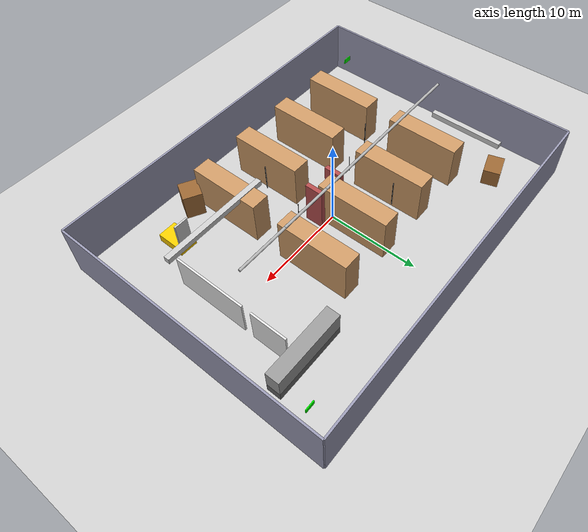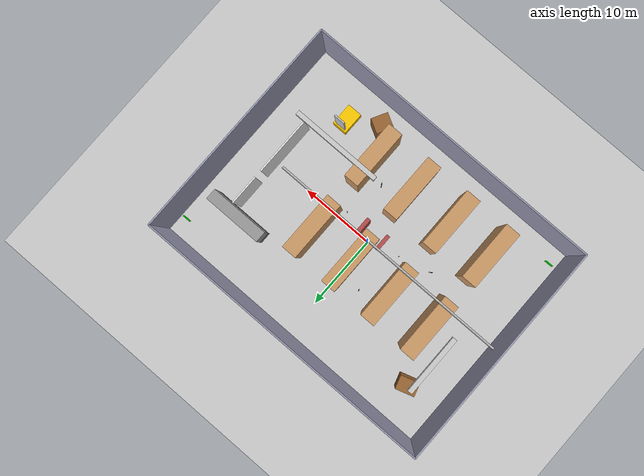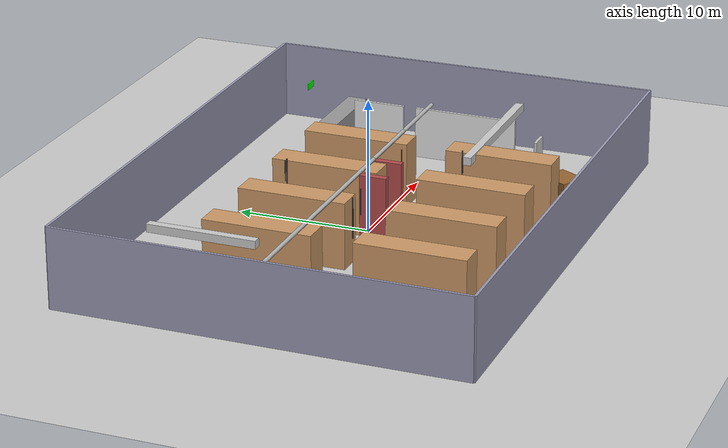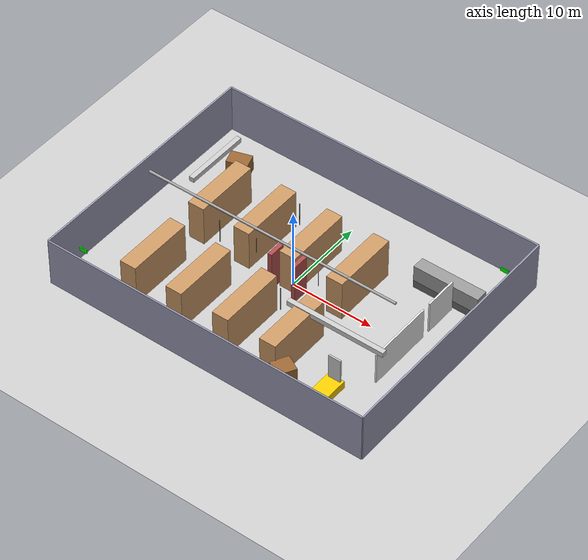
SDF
<?xml version="1.0" ?>
<sdf version="1.8">
  <world name="default">
    <!-- simple directional light (avoids needing model://sun) -->
    <light name="sun" type="directional">
      <cast_shadows>true</cast_shadows>
      <direction>-0.5 0.5 -1</direction>
      <diffuse>1 1 1 1</diffuse>
      <specular>0.1 0.1 0.1 1</specular>
    </light>

    <!-- Additional warehouse lighting -->
    <light name="warehouse_light_1" type="point">
      <pose>-10 -5 5.5 0 0 0</pose>
      <diffuse>0.8 0.8 0.8 1</diffuse>
      <specular>0.2 0.2 0.2 1</specular>
      <attenuation>
        <range>15</range>
        <constant>0.1</constant>
        <linear>0.01</linear>
        <quadratic>0.001</quadratic>
      </attenuation>
      <cast_shadows>true</cast_shadows>
    </light>

    <light name="warehouse_light_2" type="point">
      <pose>0 0 5.5 0 0 0</pose>
      <diffuse>0.8 0.8 0.8 1</diffuse>
      <specular>0.2 0.2 0.2 1</specular>
      <attenuation>
        <range>15</range>
        <constant>0.1</constant>
        <linear>0.01</linear>
        <quadratic>0.001</quadratic>
      </attenuation>
      <cast_shadows>true</cast_shadows>
    </light>

    <light name="warehouse_light_3" type="point">
      <pose>10 5 5.5 0 0 0</pose>
      <diffuse>0.8 0.8 0.8 1</diffuse>
      <specular>0.2 0.2 0.2 1</specular>
      <attenuation>
        <range>15</range>
        <constant>0.1</constant>
        <linear>0.01</linear>
        <quadratic>0.001</quadratic>
      </attenuation>
      <cast_shadows>true</cast_shadows>
    </light>

    <light name="entrance_light" type="spot">
      <pose>-18 0 4 0 0.5 1.57</pose>
      <diffuse>1 1 0.8 1</diffuse>
      <specular>0.3 0.3 0.2 1</specular>
      <direction>1 0 -0.5</direction>
      <attenuation>
        <range>20</range>
        <constant>0.1</constant>
        <linear>0.01</linear>
        <quadratic>0.001</quadratic>
      </attenuation>
      <spot>
        <inner_angle>0.6</inner_angle>
        <outer_angle>1.0</outer_angle>
        <falloff>1</falloff>
      </spot>
      <cast_shadows>true</cast_shadows>
    </light>

    <!-- Complex Warehouse Structure -->
    <!-- Main Warehouse Building -->
    <model name="warehouse_building">
      <!-- Floor -->
      <static>true</static>
      <link name="floor">
        <pose>0 0 0 0 0 0</pose>
        <collision name="floor_collision">
          <geometry>
            <box>
              <size>40 30 0.1</size>
            </box>
          </geometry>
        </collision>
        <visual name="floor_visual">
          <geometry>
            <box>
              <size>40 30 0.1</size>
            </box>
          </geometry>
          <material>
            <ambient>0.8 0.8 0.8 1</ambient>
            <diffuse>0.8 0.8 0.8 1</diffuse>
          </material>
        </visual>
      </link>

      <!-- Walls -->
      <!-- North Wall -->
      <link name="north_wall">
        <pose>0 15 3 0 0 0</pose>
        <collision name="north_wall_collision">
          <geometry>
            <box>
              <size>40 0.2 6</size>
            </box>
          </geometry>
        </collision>
        <visual name="north_wall_visual">
          <geometry>
            <box>
              <size>40 0.2 6</size>
            </box>
          </geometry>
          <material>
            <ambient>0.6 0.6 0.7 1</ambient>
            <diffuse>0.6 0.6 0.7 1</diffuse>
          </material>
        </visual>
      </link>

      <!-- South Wall -->
      <link name="south_wall">
        <pose>0 -15 3 0 0 0</pose>
        <collision name="south_wall_collision">
          <geometry>
            <box>
              <size>40 0.2 6</size>
            </box>
          </geometry>
        </collision>
        <visual name="south_wall_visual">
          <geometry>
            <box>
              <size>40 0.2 6</size>
            </box>
          </geometry>
          <material>
            <ambient>0.6 0.6 0.7 1</ambient>
            <diffuse>0.6 0.6 0.7 1</diffuse>
          </material>
        </visual>
      </link>

      <!-- East Wall -->
      <link name="east_wall">
        <pose>20 0 3 0 0 0</pose>
        <collision name="east_wall_collision">
          <geometry>
            <box>
              <size>0.2 30 6</size>
            </box>
          </geometry>
        </collision>
        <visual name="east_wall_visual">
          <geometry>
            <box>
              <size>0.2 30 6</size>
            </box>
          </geometry>
          <material>
            <ambient>0.6 0.6 0.7 1</ambient>
            <diffuse>0.6 0.6 0.7 1</diffuse>
          </material>
        </visual>
      </link>

      <!-- West Wall -->
      <link name="west_wall">
        <pose>-20 0 3 0 0 0</pose>
        <collision name="west_wall_collision">
          <geometry>
            <box>
              <size>0.2 30 6</size>
            </box>
          </geometry>
        </collision>
        <visual name="west_wall_visual">
          <geometry>
            <box>
              <size>0.2 30 6</size>
            </box>
          </geometry>
          <material>
            <ambient>0.6 0.6 0.7 1</ambient>
            <diffuse>0.6 0.6 0.7 1</diffuse>
          </material>
        </visual>
      </link>

      <!-- Ceiling -->
    </model>

    <!-- Shelving Units - Creating Narrow Corridors -->
    <!-- Row 1 of Shelves -->
    <model name="shelf_row_1">
      <static>true</static>
      <link name="shelf_1a">
        <pose>-12 -8 2.5 0 0 0</pose>
        <collision name="shelf_1a_collision">
          <geometry>
            <box>
              <size>2 8 5</size>
            </box>
          </geometry>
        </collision>
        <visual name="shelf_1a_visual">
          <geometry>
            <box>
              <size>2 8 5</size>
            </box>
          </geometry>
          <material>
            <ambient>0.8 0.6 0.4 1</ambient>
            <diffuse>0.8 0.6 0.4 1</diffuse>
          </material>
        </visual>
      </link>

      <link name="shelf_1b">
        <pose>-12 3 2.5 0 0 0</pose>
        <collision name="shelf_1b_collision">
          <geometry>
            <box>
              <size>2 8 5</size>
            </box>
          </geometry>
        </collision>
        <visual name="shelf_1b_visual">
          <geometry>
            <box>
              <size>2 8 5</size>
            </box>
          </geometry>
          <material>
            <ambient>0.8 0.6 0.4 1</ambient>
            <diffuse>0.8 0.6 0.4 1</diffuse>
          </material>
        </visual>
      </link>
    </model>

    <!-- Row 2 of Shelves -->
    <model name="shelf_row_2">
      <static>true</static>
      <link name="shelf_2a">
        <pose>-6 -8 2.5 0 0 0</pose>
        <collision name="shelf_2a_collision">
          <geometry>
            <box>
              <size>2 8 5</size>
            </box>
          </geometry>
        </collision>
        <visual name="shelf_2a_visual">
          <geometry>
            <box>
              <size>2 8 5</size>
            </box>
          </geometry>
          <material>
            <ambient>0.8 0.6 0.4 1</ambient>
            <diffuse>0.8 0.6 0.4 1</diffuse>
          </material>
        </visual>
      </link>

      <link name="shelf_2b">
        <pose>-6 3 2.5 0 0 0</pose>
        <collision name="shelf_2b_collision">
          <geometry>
            <box>
              <size>2 8 5</size>
            </box>
          </geometry>
        </collision>
        <visual name="shelf_2b_visual">
          <geometry>
            <box>
              <size>2 8 5</size>
            </box>
          </geometry>
          <material>
            <ambient>0.8 0.6 0.4 1</ambient>
            <diffuse>0.8 0.6 0.4 1</diffuse>
          </material>
        </visual>
      </link>
    </model>

    <!-- Row 3 of Shelves -->
    <model name="shelf_row_3">
      <static>true</static>
      <link name="shelf_3a">
        <pose>0 -8 2.5 0 0 0</pose>
        <collision name="shelf_3a_collision">
          <geometry>
            <box>
              <size>2 8 5</size>
            </box>
          </geometry>
        </collision>
        <visual name="shelf_3a_visual">
          <geometry>
            <box>
              <size>2 8 5</size>
            </box>
          </geometry>
          <material>
            <ambient>0.8 0.6 0.4 1</ambient>
            <diffuse>0.8 0.6 0.4 1</diffuse>
          </material>
        </visual>
      </link>

      <link name="shelf_3b">
        <pose>0 3 2.5 0 0 0</pose>
        <collision name="shelf_3b_collision">
          <geometry>
            <box>
              <size>2 8 5</size>
            </box>
          </geometry>
        </collision>
        <visual name="shelf_3b_visual">
          <geometry>
            <box>
              <size>2 8 5</size>
            </box>
          </geometry>
          <material>
            <ambient>0.8 0.6 0.4 1</ambient>
            <diffuse>0.8 0.6 0.4 1</diffuse>
          </material>
        </visual>
      </link>
    </model>

    <!-- Row 4 of Shelves -->
    <model name="shelf_row_4">
      <static>true</static>
      <link name="shelf_4a">
        <pose>6 -8 2.5 0 0 0</pose>
        <collision name="shelf_4a_collision">
          <geometry>
            <box>
              <size>2 8 5</size>
            </box>
          </geometry>
        </collision>
        <visual name="shelf_4a_visual">
          <geometry>
            <box>
              <size>2 8 5</size>
            </box>
          </geometry>
          <material>
            <ambient>0.8 0.6 0.4 1</ambient>
            <diffuse>0.8 0.6 0.4 1</diffuse>
          </material>
        </visual>
      </link>

      <link name="shelf_4b">
        <pose>6 3 2.5 0 0 0</pose>
        <collision name="shelf_4b_collision">
          <geometry>
            <box>
              <size>2 8 5</size>
            </box>
          </geometry>
        </collision>
        <visual name="shelf_4b_visual">
          <geometry>
            <box>
              <size>2 8 5</size>
            </box>
          </geometry>
          <material>
            <ambient>0.8 0.6 0.4 1</ambient>
            <diffuse>0.8 0.6 0.4 1</diffuse>
          </material>
        </visual>
      </link>
    </model>

    <!-- Hanging Obstacles and Pipes -->
    <!-- Hanging Cables -->
    <model name="hanging_cables">
      <static>true</static>
      <link name="cable_1">
        <pose>-8 -2 4.5 0 0 0</pose>
        <collision name="cable_1_collision">
          <geometry>
            <cylinder>
              <radius>0.05</radius>
              <length>3</length>
            </cylinder>
          </geometry>
        </collision>
        <visual name="cable_1_visual">
          <geometry>
            <cylinder>
              <radius>0.05</radius>
              <length>3</length>
            </cylinder>
          </geometry>
          <material>
            <ambient>0.2 0.2 0.2 1</ambient>
            <diffuse>0.2 0.2 0.2 1</diffuse>
          </material>
        </visual>
      </link>

      <link name="cable_2">
        <pose>-3 5 4.5 0 0 0</pose>
        <collision name="cable_2_collision">
          <geometry>
            <cylinder>
              <radius>0.05</radius>
              <length>3</length>
            </cylinder>
          </geometry>
        </collision>
        <visual name="cable_2_visual">
          <geometry>
            <cylinder>
              <radius>0.05</radius>
              <length>3</length>
            </cylinder>
          </geometry>
          <material>
            <ambient>0.2 0.2 0.2 1</ambient>
            <diffuse>0.2 0.2 0.2 1</diffuse>
          </material>
        </visual>
      </link>

      <link name="cable_3">
        <pose>3 -6 4.5 0 0 0</pose>
        <collision name="cable_3_collision">
          <geometry>
            <cylinder>
              <radius>0.05</radius>
              <length>3</length>
            </cylinder>
          </geometry>
        </collision>
        <visual name="cable_3_visual">
          <geometry>
            <cylinder>
              <radius>0.05</radius>
              <length>3</length>
            </cylinder>
          </geometry>
          <material>
            <ambient>0.2 0.2 0.2 1</ambient>
            <diffuse>0.2 0.2 0.2 1</diffuse>
          </material>
        </visual>
      </link>
    </model>

    <!-- Overhead Pipes -->
    <model name="overhead_pipes">
      <static>true</static>
      <link name="pipe_1">
        <pose>-9 0 5.2 0 1.57 0</pose>
        <collision name="pipe_1_collision">
          <geometry>
            <cylinder>
              <radius>0.15</radius>
              <length>20</length>
            </cylinder>
          </geometry>
        </collision>
        <visual name="pipe_1_visual">
          <geometry>
            <cylinder>
              <radius>0.15</radius>
              <length>20</length>
            </cylinder>
          </geometry>
          <material>
            <ambient>0.7 0.7 0.7 1</ambient>
            <diffuse>0.7 0.7 0.7 1</diffuse>
          </material>
        </visual>
      </link>

      <link name="pipe_2">
        <pose>-3 0 5.2 0 1.57 0</pose>
        <collision name="pipe_2_collision">
          <geometry>
            <cylinder>
              <radius>0.15</radius>
              <length>20</length>
            </cylinder>
          </geometry>
        </collision>
        <visual name="pipe_2_visual">
          <geometry>
            <cylinder>
              <radius>0.15</radius>
              <length>20</length>
            </cylinder>
          </geometry>
          <material>
            <ambient>0.7 0.7 0.7 1</ambient>
            <diffuse>0.7 0.7 0.7 1</diffuse>
          </material>
        </visual>
      </link>

      <link name="pipe_3">
        <pose>3 0 5.2 0 1.57 0</pose>
        <collision name="pipe_3_collision">
          <geometry>
            <cylinder>
              <radius>0.15</radius>
              <length>20</length>
            </cylinder>
          </geometry>
        </collision>
        <visual name="pipe_3_visual">
          <geometry>
            <cylinder>
              <radius>0.15</radius>
              <length>20</length>
            </cylinder>
          </geometry>
          <material>
            <ambient>0.7 0.7 0.7 1</ambient>
            <diffuse>0.7 0.7 0.7 1</diffuse>
          </material>
        </visual>
      </link>
    </model>

    <!-- Storage Equipment -->
    <!-- Forklift -->
    <model name="forklift">
      <static>true</static>
      <pose>12 -10 0.5 0 0 1.57</pose>
      <link name="forklift_body">
        <collision name="forklift_body_collision">
          <geometry>
            <box>
              <size>3 2 1</size>
            </box>
          </geometry>
        </collision>
        <visual name="forklift_body_visual">
          <geometry>
            <box>
              <size>3 2 1</size>
            </box>
          </geometry>
          <material>
            <ambient>1 0.8 0 1</ambient>
            <diffuse>1 0.8 0 1</diffuse>
          </material>
        </visual>
      </link>

      <link name="forklift_mast">
        <pose>1.2 0 2 0 0 0</pose>
        <collision name="forklift_mast_collision">
          <geometry>
            <box>
              <size>0.2 1.5 3</size>
            </box>
          </geometry>
        </collision>
        <visual name="forklift_mast_visual">
          <geometry>
            <box>
              <size>0.2 1.5 3</size>
            </box>
          </geometry>
          <material>
            <ambient>0.8 0.8 0.8 1</ambient>
            <diffuse>0.8 0.8 0.8 1</diffuse>
          </material>
        </visual>
      </link>
    </model>

    <!-- Conveyor Belt -->
    <model name="conveyor_belt">
      <static>true</static>
      <pose>14 8 0.5 0 0 0</pose>
      <link name="conveyor_base">
        <collision name="conveyor_base_collision">
          <geometry>
            <box>
              <size>8 1.5 1</size>
            </box>
          </geometry>
        </collision>
        <visual name="conveyor_base_visual">
          <geometry>
            <box>
              <size>8 1.5 1</size>
            </box>
          </geometry>
          <material>
            <ambient>0.4 0.4 0.4 1</ambient>
            <diffuse>0.4 0.4 0.4 1</diffuse>
          </material>
        </visual>
      </link>

      <link name="conveyor_frame">
        <pose>0 0 1.5 0 0 0</pose>
        <collision name="conveyor_frame_collision">
          <geometry>
            <box>
              <size>8 1.5 2</size>
            </box>
          </geometry>
        </collision>
        <visual name="conveyor_frame_visual">
          <geometry>
            <box>
              <size>8 1.5 2</size>
            </box>
          </geometry>
          <material>
            <ambient>0.6 0.6 0.6 1</ambient>
            <diffuse>0.6 0.6 0.6 1</diffuse>
          </material>
        </visual>
      </link>
    </model>

    <!-- Stacked Pallets creating irregular obstacles -->
    <model name="pallet_stack_1">
      <static>true</static>
      <pose>-15 10 1 0 0 0.3</pose>
      <link name="pallets">
        <collision name="pallets_collision">
          <geometry>
            <box>
              <size>2.5 1.8 2</size>
            </box>
          </geometry>
        </collision>
        <visual name="pallets_visual">
          <geometry>
            <box>
              <size>2.5 1.8 2</size>
            </box>
          </geometry>
          <material>
            <ambient>0.6 0.4 0.2 1</ambient>
            <diffuse>0.6 0.4 0.2 1</diffuse>
          </material>
        </visual>
      </link>
    </model>

    <model name="pallet_stack_2">
      <static>true</static>
      <pose>8 -12 1.5 0 0 -0.5</pose>
      <link name="pallets">
        <collision name="pallets_collision">
          <geometry>
            <box>
              <size>2 2.2 3</size>
            </box>
          </geometry>
        </collision>
        <visual name="pallets_visual">
          <geometry>
            <box>
              <size>2 2.2 3</size>
            </box>
          </geometry>
          <material>
            <ambient>0.6 0.4 0.2 1</ambient>
            <diffuse>0.6 0.4 0.2 1</diffuse>
          </material>
        </visual>
      </link>
    </model>

    <!-- Narrow passage between office area -->
    <model name="office_partition">
      <static>true</static>
      <link name="partition_1">
        <pose>15 -2 2 0 0 0</pose>
        <collision name="partition_1_collision">
          <geometry>
            <box>
              <size>0.2 8 4</size>
            </box>
          </geometry>
        </collision>
        <visual name="partition_1_visual">
          <geometry>
            <box>
              <size>0.2 8 4</size>
            </box>
          </geometry>
          <material>
            <ambient>0.9 0.9 0.9 1</ambient>
            <diffuse>0.9 0.9 0.9 1</diffuse>
          </material>
        </visual>
      </link>

      <!-- Door opening in partition -->
      <link name="partition_2">
        <pose>15 5 2 0 0 0</pose>
        <collision name="partition_2_collision">
          <geometry>
            <box>
              <size>0.2 4 4</size>
            </box>
          </geometry>
        </collision>
        <visual name="partition_2_visual">
          <geometry>
            <box>
              <size>0.2 4 4</size>
            </box>
          </geometry>
          <material>
            <ambient>0.9 0.9 0.9 1</ambient>
            <diffuse>0.9 0.9 0.9 1</diffuse>
          </material>
        </visual>
      </link>
    </model>

    <!-- Additional Challenging Obstacles -->
    <!-- Narrow doorway passage -->
    <model name="narrow_passage">
      <static>true</static>
      <link name="passage_wall_1">
        <pose>-1.5 -1 2.5 0 0 1.57</pose>
        <collision name="passage_wall_1_collision">
          <geometry>
            <box>
              <size>2 0.5 5</size>
            </box>
          </geometry>
        </collision>
        <visual name="passage_wall_1_visual">
          <geometry>
            <box>
              <size>2 0.5 5</size>
            </box>
          </geometry>
          <material>
            <ambient>0.7 0.3 0.3 1</ambient>
            <diffuse>0.7 0.3 0.3 1</diffuse>
          </material>
        </visual>
      </link>

      <link name="passage_wall_2">
        <pose>1.5 -1 2.5 0 0 1.57</pose>
        <collision name="passage_wall_2_collision">
          <geometry>
            <box>
              <size>2 0.5 5</size>
            </box>
          </geometry>
        </collision>
        <visual name="passage_wall_2_visual">
          <geometry>
            <box>
              <size>2 0.5 5</size>
            </box>
          </geometry>
          <material>
            <ambient>0.7 0.3 0.3 1</ambient>
            <diffuse>0.7 0.3 0.3 1</diffuse>
          </material>
        </visual>
      </link>
    </model>

    <!-- Hanging Chain Obstacles -->
    <model name="hanging_chains">
      <static>true</static>
      <link name="chain_1">
        <pose>-4 -1 4 0 0 0</pose>
        <collision name="chain_1_collision">
          <geometry>
            <cylinder>
              <radius>0.03</radius>
              <length>2</length>
            </cylinder>
          </geometry>
        </collision>
        <visual name="chain_1_visual">
          <geometry>
            <cylinder>
              <radius>0.03</radius>
              <length>2</length>
            </cylinder>
          </geometry>
          <material>
            <ambient>0.3 0.3 0.3 1</ambient>
            <diffuse>0.3 0.3 0.3 1</diffuse>
          </material>
        </visual>
      </link>

      <link name="chain_2">
        <pose>4 -1 4 0 0 0</pose>
        <collision name="chain_2_collision">
          <geometry>
            <cylinder>
              <radius>0.03</radius>
              <length>2</length>
            </cylinder>
          </geometry>
        </collision>
        <visual name="chain_2_visual">
          <geometry>
            <cylinder>
              <radius>0.03</radius>
              <length>2</length>
            </cylinder>
          </geometry>
          <material>
            <ambient>0.3 0.3 0.3 1</ambient>
            <diffuse>0.3 0.3 0.3 1</diffuse>
          </material>
        </visual>
      </link>

      <link name="chain_3">
        <pose>-1 6 4.2 0 0 0</pose>
        <collision name="chain_3_collision">
          <geometry>
            <cylinder>
              <radius>0.03</radius>
              <length>1.6</length>
            </cylinder>
          </geometry>
        </collision>
        <visual name="chain_3_visual">
          <geometry>
            <cylinder>
              <radius>0.03</radius>
              <length>1.6</length>
            </cylinder>
          </geometry>
          <material>
            <ambient>0.3 0.3 0.3 1</ambient>
            <diffuse>0.3 0.3 0.3 1</diffuse>
          </material>
        </visual>
      </link>
    </model>

    <!-- Ventilation Ducts -->
    <model name="ventilation_ducts">
      <static>true</static>
      <link name="duct_1">
        <pose>-15 6 4.8 0 0 1.57</pose>
        <collision name="duct_1_collision">
          <geometry>
            <box>
              <size>8 0.6 0.6</size>
            </box>
          </geometry>
        </collision>
        <visual name="duct_1_visual">
          <geometry>
            <box>
              <size>8 0.6 0.6</size>
            </box>
          </geometry>
          <material>
            <ambient>0.8 0.8 0.8 1</ambient>
            <diffuse>0.8 0.8 0.8 1</diffuse>
          </material>
        </visual>
      </link>

      <link name="duct_2">
        <pose>10 -6 4.8 0 0 0</pose>
        <collision name="duct_2_collision">
          <geometry>
            <box>
              <size>12 0.6 0.6</size>
            </box>
          </geometry>
        </collision>
        <visual name="duct_2_visual">
          <geometry>
            <box>
              <size>12 0.6 0.6</size>
            </box>
          </geometry>
          <material>
            <ambient>0.8 0.8 0.8 1</ambient>
            <diffuse>0.8 0.8 0.8 1</diffuse>
          </material>
        </visual>
      </link>
    </model>

    <!-- Emergency Exit Signs (hanging low) -->
    <model name="emergency_signs">
      <static>true</static>
      <link name="sign_1">
        <pose>-18 -12 3.5 0 0 0</pose>
        <collision name="sign_1_collision">
          <geometry>
            <box>
              <size>1 0.1 0.5</size>
            </box>
          </geometry>
        </collision>
        <visual name="sign_1_visual">
          <geometry>
            <box>
              <size>1 0.1 0.5</size>
            </box>
          </geometry>
          <material>
            <ambient>0 1 0 1</ambient>
            <diffuse>0 1 0 1</diffuse>
          </material>
        </visual>
      </link>

      <link name="sign_2">
        <pose>18 12 3.5 0 0 3.14</pose>
        <collision name="sign_2_collision">
          <geometry>
            <box>
              <size>1 0.1 0.5</size>
            </box>
          </geometry>
        </collision>
        <visual name="sign_2_visual">
          <geometry>
            <box>
              <size>1 0.1 0.5</size>
            </box>
          </geometry>
          <material>
            <ambient>0 1 0 1</ambient>
            <diffuse>0 1 0 1</diffuse>
          </material>
        </visual>
      </link>
    </model>

    <!-- Your local X3 model. If your model name/folder differs, change the URI accordingly. -->

    <include>
      <name>GroundPlane</name>
      <uri>https://fuel.gazebosim.org/1.0/openrobotics/models/Ground%20Plane</uri>
      <pose>0 0 0.05 0 0 0</pose>
    </include>
  </world>
</sdf>
